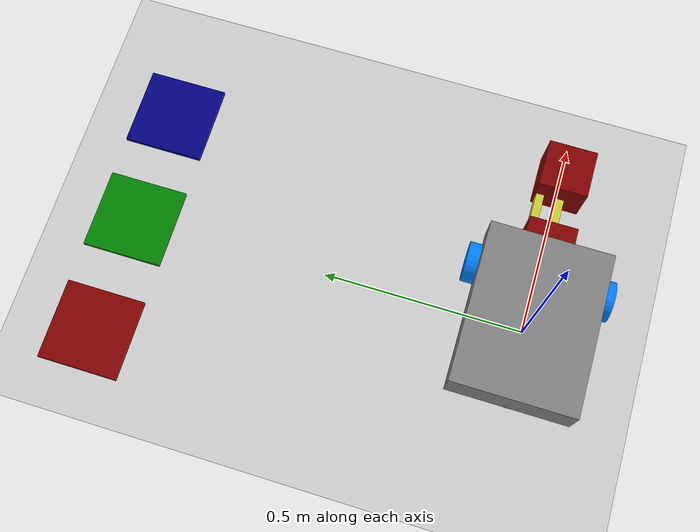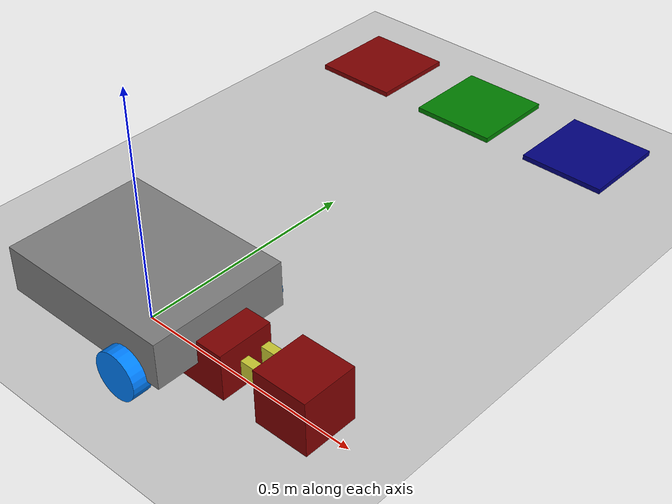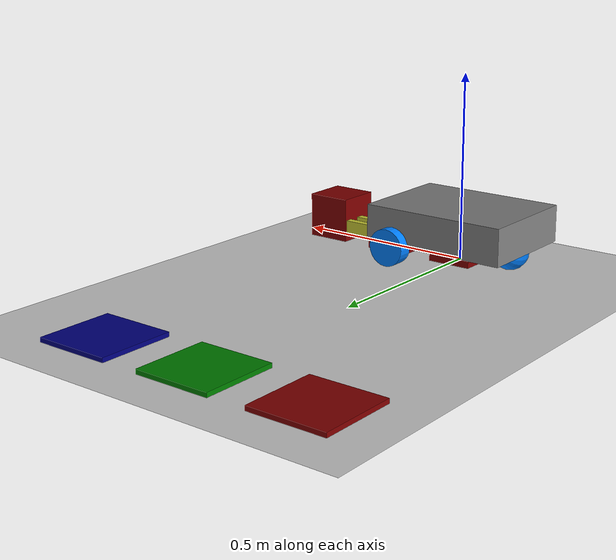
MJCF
<mujoco>
  <include file="robot.xml"/>

  <option cone="elliptic"/>
  <option timestep="0.001666666666"/> <!-- increase from 500Hz to 600Hz to be divisible by 30-->

  <size njmax="5000" nconmax="5000"/>

  <visual>
    <map znear="0.001"/>
  </visual>

  <asset>
        <texture type="2d" colorspace="sRGB" name="texplane" file="textures/light-gray-floor-tile.png"/>
        <texture type="cube" colorspace="linear" name="cube_redwood" file="textures/red-wood.png"/>
        <texture type="cube" colorspace="linear" name="cube_greenwood" file="textures/green-wood.png"/>
        <texture type="cube" colorspace="linear" name="cube_bluewood" file="textures/blue-wood.png"/>
        <material name="floorplane" texture="texplane" texuniform="true" texrepeat="2 2" specular="0" shininess="0" reflectance="0.01"/>
        <material name="cube_redwood_mat" texture="cube_redwood" specular="0.4" shininess="0.1"/>
        <material name="cube_greenwood_mat" texture="cube_greenwood" specular="0.4" shininess="0.1"/>
        <material name="cube_bluewood_mat" texture="cube_bluewood" specular="0.4" shininess="0.1"/>
  </asset>

  <worldbody>
    <geom name="floor" size="3 3 0.125" type="plane" group="1" material="floorplane"/>
    <light pos="1 1 1.5" dir="-0.19245 -0.19245 -0.96225" type="directional" castshadow="false"/>
    <camera name="frontview" pos="1.6 0 0.45" quat="0.560842 0.430646 0.430646 0.560842"/>
    <camera name="birdview" pos="-0.2 0 3" quat="0.707107 0 0 0.707107"/>
    <camera name="agentview" pos="0.5 0 0.35" quat="0.653098 0.271041 0.271041 0.653098"/>
    <camera name="sideview_far" pos="-0.1 4.0 1.8" quat="0.00990507 0.00687796 0.591223 0.806418"/>
    <camera name="sideview" pos="-0.1 2.8 1.2" quat="0.00990507 0.00687796 0.591223 0.806418"/>

    <body name="cube1" pos="0 0 0">
      <inertial mass="0.02" pos="0 0 0" diaginertia="0.0001 0.0001 0.0001"/>
      <joint name="cube_joint0" type="free"/>
      <geom name="cube_g0" size="0.06 0.06 0.06" type="box" rgba="0.5 0 0 1" friction="10.0 0.05 0.005"/>
      <geom name="cube_g0_vis" size="0.06 0.06 0.06" type="box" contype="0" conaffinity="0" group="1" mass="0" material="cube_bluewood_mat"/>
      <site name="cube1_default_site" pos="0 0 0" size="0.002" rgba="1 0 0 1"/>
    </body>
    <body name="cube2" pos="0.2 0 0.04">
      <inertial mass="0.16" pos="0 0 0" diaginertia="0.0001 0.0001 0.0001"/>
      <joint name="cube_joint1" type="free"/>
      <geom name="cube_g1" size="0.06 0.06 0.06" type="box" rgba="0.5 0 0 1" friction="10.0 0.05 0.005"/>
      <geom name="cube_g1_vis" size="0.06 0.06 0.06" type="box" contype="0" conaffinity="0" group="1" mass="0" material="cube_greenwood_mat"/>
      <site name="cube2_default_site" pos="0 0 0" size="0.002" rgba="1 0 0 1"/>
    </body>
    <body name="cube3" pos="0.4 0 0.06">
      <inertial mass="0.54" pos="0 0 0" diaginertia="0.0001 0.0001 0.0001"/>
      <joint name="cube_joint2" type="free"/>
      <geom name="cube_g2" size="0.06 0.06 0.06" type="box" rgba="0.5 0 0 1" friction="10.0 0.05 0.005"/>
      <geom name="cube_g2_vis" size="0.06 0.06 0.06" type="box" contype="0" conaffinity="0" group="1" mass="0" material="cube_redwood_mat"/>
      <site name="cube3_default_site" pos="0 0 0" size="0.002" rgba="1 0 0 1"/>
    </body>
    <body name="box1" pos="-0.3 1 0">
      <geom type="box" size="0.1 0.1 0.01" pos="0 0 0" rgba="0.5 0 0 1" mass="5.0"/>
    </body>
    <body name="box2" pos="0 1 0.0">
      <geom type="box" size="0.1 0.1 0.01" pos="0 0 0" rgba="0 0.5 0 1" mass="5.0"/>
    </body>
    <body name="box3" pos="0.3 1 0.0">
      <geom type="box" size="0.1 0.1 0.01" pos="0 0 0" rgba="0.0 0 0.5 1" mass="5.0"/>
    </body>
  </worldbody>
</mujoco>

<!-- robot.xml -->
<mujoco model="mobile_robot">
  <option timestep="0.002" />

  <asset>
    <texture name="wheel_texture" type="cube" builtin="gradient" rgb1="0.0 0.0 1.0" rgb2="0.0 1.0 1.0" width="256" height="256"/>
    <material name="wheel_mat" texture="wheel_texture" specular=".2" shininess=".1"/>
  </asset>

  <worldbody>
    <!-- Chassis -->
    <body name="base" pos="0 0 0.1">
      <camera name="robotfrontview" pos="0.1 0 0" euler="90 -90 0"/>
      <camera name="robotfrontview_high" pos="-0.3 0.0 0.25" euler="90 -90 0"/>
      <freejoint name="base_joint"/>
      <inertial mass="5.0" pos="-0.1 0 -0.15" diaginertia="0.1 0.1 0.1" />
      <geom type="box" size="0.2 0.15 0.05" rgba="0.5 0.5 0.5 1" />
      <!-- Right Wheel -->
      <body name="right_wheel" pos="0.12 -0.16 -0.05" zaxis="0 1 0">
        <inertial mass="0.05" pos="0 0 0" diaginertia="0.001 0.001 0.001" />
        <joint name="right_joint" type="hinge" axis="0 0 1" frictionloss="0.1"/>
        <geom type="cylinder" size="0.05 0.02" material="wheel_mat" friction="10.0 0.05 0.005"/>
      </body>
      <!-- Left Wheel -->
      <body name="left_wheel" pos="0.12 0.16 -0.05" zaxis="0 1 0">
        <inertial mass="0.05" pos="0 0 0" diaginertia="0.001 0.001 0.001" />
        <joint name="left_joint" type="hinge" axis="0 0 1" frictionloss="0.1"/>
        <geom type="cylinder" size="0.05 0.02" material="wheel_mat" friction="10.0 0.05 0.005"/>
      </body>

      <!-- Center Ball -->
      <body name="center_wheel" pos="-0.15 0 -0.05" zaxis="0 1 0">
        <inertial mass="0.05" pos="0 0 0" diaginertia="0.001 0.001 0.001" />
        <joint name="center_joint" type="ball" frictionloss="0.1"/>
        <geom type="sphere" size="0.05" material="wheel_mat" friction="10.0 0.005 0.0005"/>
      </body>

      <body name="gripper_base" pos="0.2 0.02 -0.06">
        <inertial mass="0.1" pos="0 0 0" diaginertia="0.1 0.1 0.1" />
        <joint name="gripper_lift_joint" type="slide" pos="0.1 0 0" range="0 0.15" axis="0 0 1" />

        <body name="gripper_right_claw" pos="0.12 -0.025 0" euler="90 0 180">
          <joint name="gripper_right_claw_joint" type="slide" pos="0.1 0 0" range="0 1.0"/>
          <geom name="gripper_right_claw" type="box" size="0.1 0.02 0.01" rgba="0.8 0.8 0.2 1" friction="10.0 0.05 0.005"/>
        </body>

        <body name="gripper_left_claw" pos="0.12 0.025 0" euler="-90 0 180">
          <joint name="gripper_left_claw_joint" type="slide" pos="0.1 0 0" range="0 1.0"/>
          <geom name="gripper_left_claw" type="box" size="0.1 0.02 0.01" rgba="0.8 0.8 0.2 1" friction="10.0 0.05 0.005"/>
        </body>
      </body>
    </body>
  </worldbody>

  <!-- Actuators to drive the wheels -->
  <actuator>
    <velocity joint="right_joint" name="right_motor" kv="1.0" ctrllimited="true" ctrlrange="-50.0 50.0"/>
    <velocity joint="left_joint" name="left_motor" kv="1.0" ctrllimited="true" ctrlrange="-50.0 50.0"/>
    <position joint="gripper_right_claw_joint" name="gripper_right_pos"  kp="500" kv="20.0"/>
    <position joint="gripper_lift_joint" name="gripper_lift"  kp="1000" kv="40.0"/>
    <position joint="gripper_left_claw_joint" name="gripper_left_pos" kp="500" kv="20.0"/>
  </actuator>
</mujoco>
